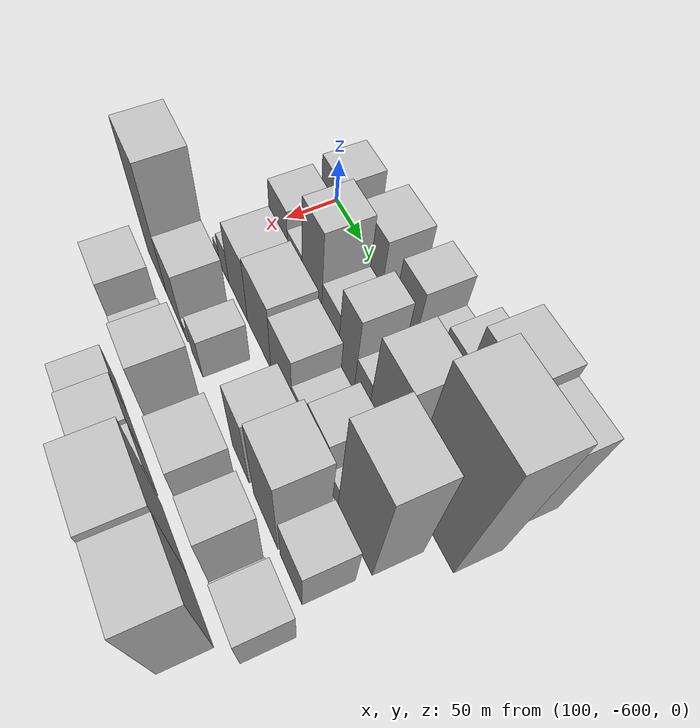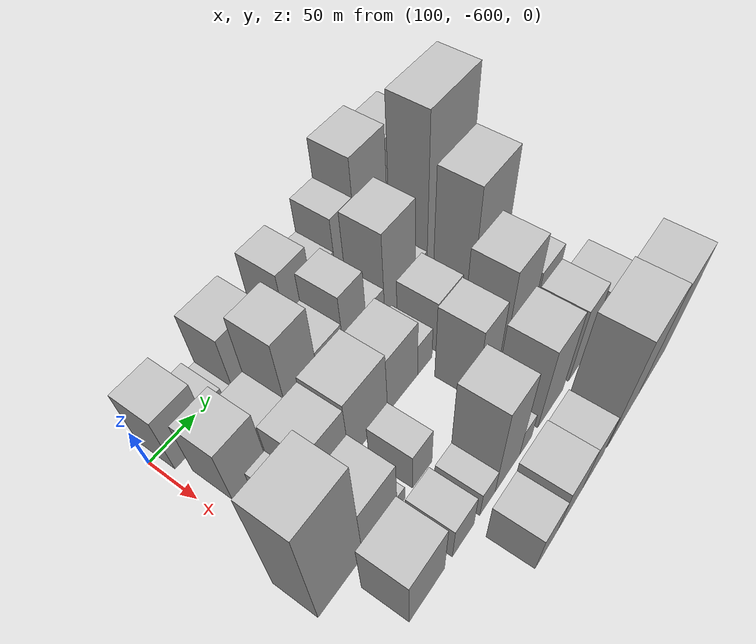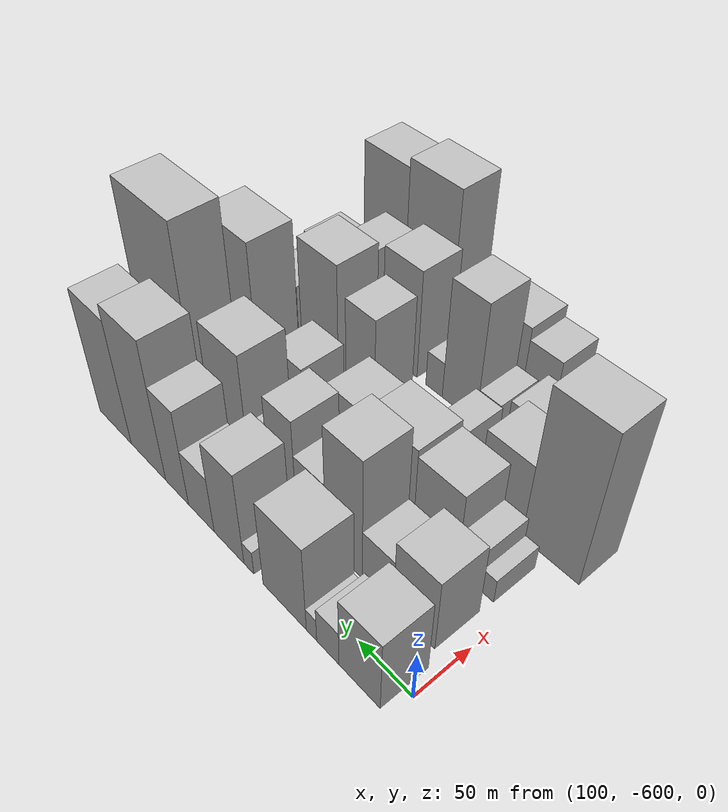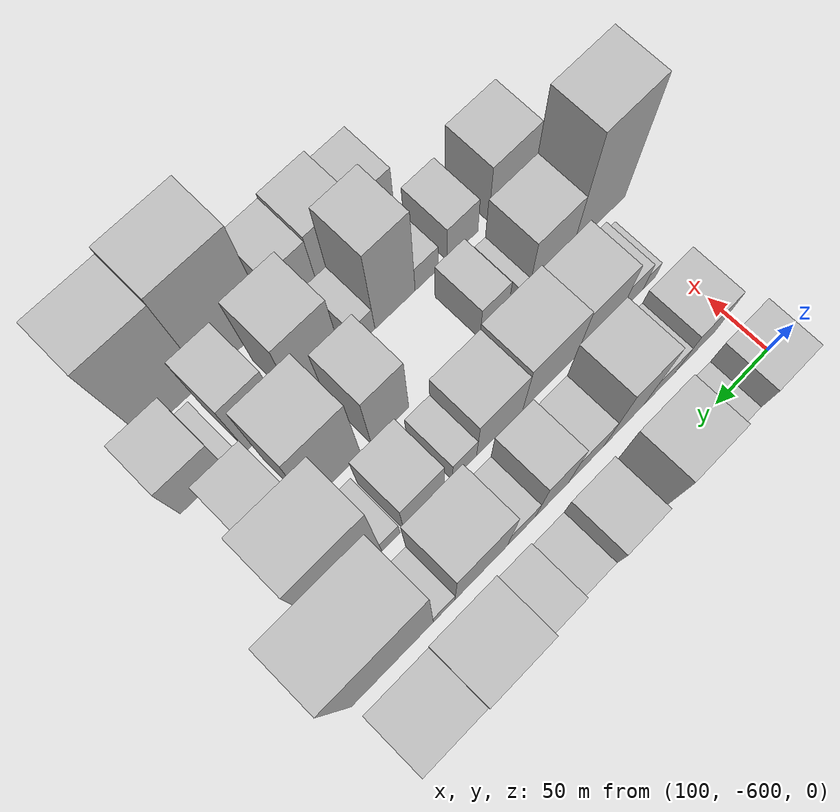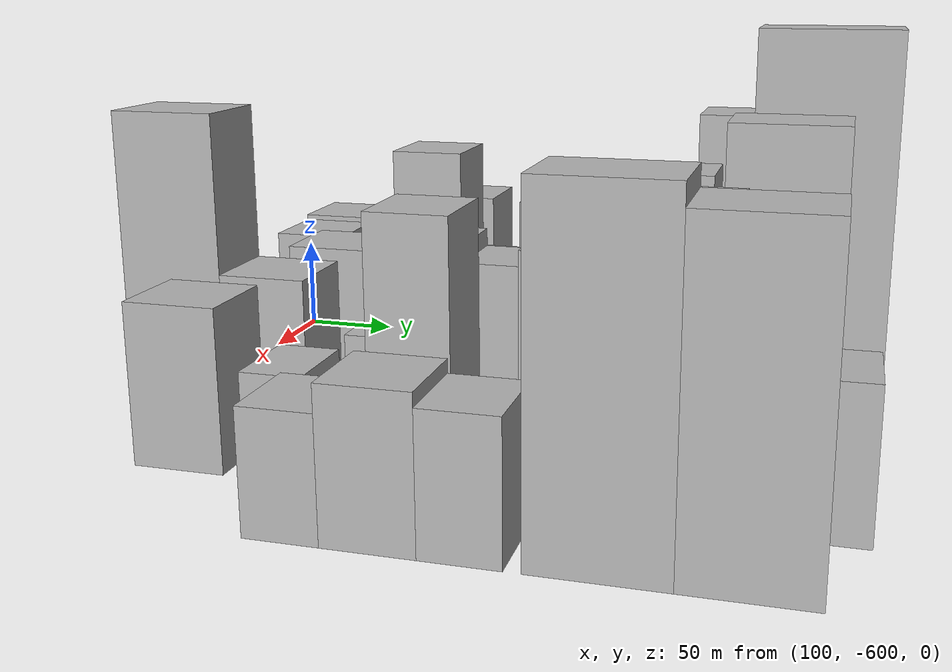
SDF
<sdf version="1.6">
 <world name="default">
  <model name="building_8">
   <static>1</static>
   <pose>100.0000 -573.2025 0 0.000000 0.000000 0.000000</pose>
   <link name="link">
    <pose>0 0 36.00 0 0 0</pose>
    <collision name="collision"><geometry><box><size>40.0000 37.8773 72.0000</size></box></geometry></collision>
    <visual name="visual">
     <cast_shadows>0</cast_shadows>
     <geometry><box><size>40.0000 37.8773 72.0000</size></box></geometry>
     <material>
      <script>
       <uri>model://HANNAS_wall/materials/scripts</uri>
       <uri>model://HANNAS_wall/materials/textures</uri>
       <name>vrc/HANNAS_wall</name>
      </script>
     </material>
    </visual>
   </link>
  </model>
  <model name="building_9">
   <static>1</static>
   <pose>100.0000 -543.5128 0 0.000000 0.000000 0.000000</pose>
   <link name="link">
    <pose>0 0 18.00 0 0 0</pose>
    <collision name="collision"><geometry><box><size>40.0000 21.5021 36.0000</size></box></geometry></collision>
    <visual name="visual">
     <cast_shadows>0</cast_shadows>
     <geometry><box><size>40.0000 21.5021 36.0000</size></box></geometry>
     <material>
      <script>
       <uri>model://HANNAS_wall/materials/scripts</uri>
       <uri>model://HANNAS_wall/materials/textures</uri>
       <name>vrc/HANNAS_wall</name>
      </script>
     </material>
    </visual>
   </link>
  </model>
  <model name="building_10">
   <static>1</static>
   <pose>100.0000 -527.5985 0 0.000000 0.000000 0.000000</pose>
   <link name="link">
    <pose>0 0 12.00 0 0 0</pose>
    <collision name="collision"><geometry><box><size>40.0000 10.3264 24.0000</size></box></geometry></collision>
    <visual name="visual">
     <cast_shadows>0</cast_shadows>
     <geometry><box><size>40.0000 10.3264 24.0000</size></box></geometry>
     <material>
      <script>
       <uri>model://HANNAS_wall/materials/scripts</uri>
       <uri>model://HANNAS_wall/materials/textures</uri>
       <name>vrc/HANNAS_wall</name>
      </script>
     </material>
    </visual>
   </link>
  </model>
  <model name="building_11">
   <static>1</static>
   <pose>100.0000 -499.9717 0 0.000000 0.000000 0.000000</pose>
   <link name="link">
    <pose>0 0 43.50 0 0 0</pose>
    <collision name="collision"><geometry><box><size>40.0000 44.9273 87.0000</size></box></geometry></collision>
    <visual name="visual">
     <cast_shadows>0</cast_shadows>
     <geometry><box><size>40.0000 44.9273 87.0000</size></box></geometry>
     <material>
      <script>
       <uri>model://HANNAS_wall/materials/scripts</uri>
       <uri>model://HANNAS_wall/materials/textures</uri>
       <name>vrc/HANNAS_wall</name>
      </script>
     </material>
    </visual>
   </link>
  </model>
  <model name="building_12">
   <static>1</static>
   <pose>100.0000 -462.0236 0 0.000000 0.000000 0.000000</pose>
   <link name="link">
    <pose>0 0 12.00 0 0 0</pose>
    <collision name="collision"><geometry><box><size>40.0000 10.9687 24.0000</size></box></geometry></collision>
    <visual name="visual">
     <cast_shadows>0</cast_shadows>
     <geometry><box><size>40.0000 10.9687 24.0000</size></box></geometry>
     <material>
      <script>
       <uri>model://HANNAS_wall/materials/scripts</uri>
       <uri>model://HANNAS_wall/materials/textures</uri>
       <name>vrc/HANNAS_wall</name>
      </script>
     </material>
    </visual>
   </link>
  </model>
  <model name="building_13">
   <static>1</static>
   <pose>100.0000 -439.4131 0 0.000000 0.000000 0.000000</pose>
   <link name="link">
    <pose>0 0 46.50 0 0 0</pose>
    <collision name="collision"><geometry><box><size>40.0000 34.2523 93.0000</size></box></geometry></collision>
    <visual name="visual">
     <cast_shadows>0</cast_shadows>
     <geometry><box><size>40.0000 34.2523 93.0000</size></box></geometry>
     <material>
      <script>
       <uri>model://HANNAS_wall/materials/scripts</uri>
       <uri>model://HANNAS_wall/materials/textures</uri>
       <name>vrc/HANNAS_wall</name>
      </script>
     </material>
    </visual>
   </link>
  </model>
  <model name="building_14">
   <static>1</static>
   <pose>100.0000 -406.8225 0 0.000000 0.000000 0.000000</pose>
   <link name="link">
    <pose>0 0 28.50 0 0 0</pose>
    <collision name="collision"><geometry><box><size>40.0000 30.9290 57.0000</size></box></geometry></collision>
    <visual name="visual">
     <cast_shadows>0</cast_shadows>
     <geometry><box><size>40.0000 30.9290 57.0000</size></box></geometry>
     <material>
      <script>
       <uri>model://HANNAS_wall/materials/scripts</uri>
       <uri>model://HANNAS_wall/materials/textures</uri>
       <name>vrc/HANNAS_wall</name>
      </script>
     </material>
    </visual>
   </link>
  </model>
  <model name="building_15">
   <static>1</static>
   <pose>100.0000 -376.9256 0 0.000000 0.000000 0.000000</pose>
   <link name="link">
    <pose>0 0 48.00 0 0 0</pose>
    <collision name="collision"><geometry><box><size>40.0000 28.8647 96.0000</size></box></geometry></collision>
    <visual name="visual">
     <cast_shadows>0</cast_shadows>
     <geometry><box><size>40.0000 28.8647 96.0000</size></box></geometry>
     <material>
      <script>
       <uri>model://HANNAS_wall/materials/scripts</uri>
       <uri>model://HANNAS_wall/materials/textures</uri>
       <name>vrc/HANNAS_wall</name>
      </script>
     </material>
    </visual>
   </link>
  </model>
  <model name="building_16">
   <static>1</static>
   <pose>100.0000 -339.4239 0 0.000000 0.000000 0.000000</pose>
   <link name="link">
    <pose>0 0 69.00 0 0 0</pose>
    <collision name="collision"><geometry><box><size>40.0000 46.1388 138.0000</size></box></geometry></collision>
    <visual name="visual">
     <cast_shadows>0</cast_shadows>
     <geometry><box><size>40.0000 46.1388 138.0000</size></box></geometry>
     <material>
      <script>
       <uri>model://HANNAS_wall/materials/scripts</uri>
       <uri>model://HANNAS_wall/materials/textures</uri>
       <name>vrc/HANNAS_wall</name>
      </script>
     </material>
    </visual>
   </link>
  </model>
  <model name="building_17">
   <static>1</static>
   <pose>100.0000 -294.0704 0 0.000000 0.000000 0.000000</pose>
   <link name="link">
    <pose>0 0 61.50 0 0 0</pose>
    <collision name="collision"><geometry><box><size>40.0000 44.5682 123.0000</size></box></geometry></collision>
    <visual name="visual">
     <cast_shadows>0</cast_shadows>
     <geometry><box><size>40.0000 44.5682 123.0000</size></box></geometry>
     <material>
      <script>
       <uri>model://HANNAS_wall/materials/scripts</uri>
       <uri>model://HANNAS_wall/materials/textures</uri>
       <name>vrc/HANNAS_wall</name>
      </script>
     </material>
    </visual>
   </link>
  </model>
  <model name="building_60">
   <static>1</static>
   <pose>152.0000 -566.4229 0 0.000000 0.000000 0.000000</pose>
   <link name="link">
    <pose>0 0 36.00 0 0 0</pose>
    <collision name="collision"><geometry><box><size>40.0000 38.2049 72.0000</size></box></geometry></collision>
    <visual name="visual">
     <cast_shadows>0</cast_shadows>
     <geometry><box><size>40.0000 38.2049 72.0000</size></box></geometry>
     <material>
      <script>
       <uri>model://HANNAS_wall/materials/scripts</uri>
       <uri>model://HANNAS_wall/materials/textures</uri>
       <name>vrc/HANNAS_wall</name>
      </script>
     </material>
    </visual>
   </link>
  </model>
  <model name="building_61">
   <static>1</static>
   <pose>152.0000 -532.1803 0 0.000000 0.000000 0.000000</pose>
   <link name="link">
    <pose>0 0 25.50 0 0 0</pose>
    <collision name="collision"><geometry><box><size>40.0000 30.2803 51.0000</size></box></geometry></collision>
    <visual name="visual">
     <cast_shadows>0</cast_shadows>
     <geometry><box><size>40.0000 30.2803 51.0000</size></box></geometry>
     <material>
      <script>
       <uri>model://HANNAS_wall/materials/scripts</uri>
       <uri>model://HANNAS_wall/materials/textures</uri>
       <name>vrc/HANNAS_wall</name>
      </script>
     </material>
    </visual>
   </link>
  </model>
  <model name="building_62">
   <static>1</static>
   <pose>152.0000 -498.4488 0 0.000000 0.000000 0.000000</pose>
   <link name="link">
    <pose>0 0 60.00 0 0 0</pose>
    <collision name="collision"><geometry><box><size>40.0000 37.1826 120.0000</size></box></geometry></collision>
    <visual name="visual">
     <cast_shadows>0</cast_shadows>
     <geometry><box><size>40.0000 37.1826 120.0000</size></box></geometry>
     <material>
      <script>
       <uri>model://HANNAS_wall/materials/scripts</uri>
       <uri>model://HANNAS_wall/materials/textures</uri>
       <name>vrc/HANNAS_wall</name>
      </script>
     </material>
    </visual>
   </link>
  </model>
  <model name="building_63">
   <static>1</static>
   <pose>152.0000 -463.9242 0 0.000000 0.000000 0.000000</pose>
   <link name="link">
    <pose>0 0 31.50 0 0 0</pose>
    <collision name="collision"><geometry><box><size>40.0000 31.8665 63.0000</size></box></geometry></collision>
    <visual name="visual">
     <cast_shadows>0</cast_shadows>
     <geometry><box><size>40.0000 31.8665 63.0000</size></box></geometry>
     <material>
      <script>
       <uri>model://HANNAS_wall/materials/scripts</uri>
       <uri>model://HANNAS_wall/materials/textures</uri>
       <name>vrc/HANNAS_wall</name>
      </script>
     </material>
    </visual>
   </link>
  </model>
  <model name="building_64">
   <static>1</static>
   <pose>152.0000 -432.9958 0 0.000000 0.000000 0.000000</pose>
   <link name="link">
    <pose>0 0 48.00 0 0 0</pose>
    <collision name="collision"><geometry><box><size>40.0000 29.9902 96.0000</size></box></geometry></collision>
    <visual name="visual">
     <cast_shadows>0</cast_shadows>
     <geometry><box><size>40.0000 29.9902 96.0000</size></box></geometry>
     <material>
      <script>
       <uri>model://HANNAS_wall/materials/scripts</uri>
       <uri>model://HANNAS_wall/materials/textures</uri>
       <name>vrc/HANNAS_wall</name>
      </script>
     </material>
    </visual>
   </link>
  </model>
  <model name="building_65">
   <static>1</static>
   <pose>152.0000 -405.6965 0 0.000000 0.000000 0.000000</pose>
   <link name="link">
    <pose>0 0 24.00 0 0 0</pose>
    <collision name="collision"><geometry><box><size>40.0000 24.6084 48.0000</size></box></geometry></collision>
    <visual name="visual">
     <cast_shadows>0</cast_shadows>
     <geometry><box><size>40.0000 24.6084 48.0000</size></box></geometry>
     <material>
      <script>
       <uri>model://HANNAS_wall/materials/scripts</uri>
       <uri>model://HANNAS_wall/materials/textures</uri>
       <name>vrc/HANNAS_wall</name>
      </script>
     </material>
    </visual>
   </link>
  </model>
  <model name="building_66">
   <static>1</static>
   <pose>152.0000 -370.7849 0 0.000000 0.000000 0.000000</pose>
   <link name="link">
    <pose>0 0 57.00 0 0 0</pose>
    <collision name="collision"><geometry><box><size>40.0000 45.2149 114.0000</size></box></geometry></collision>
    <visual name="visual">
     <cast_shadows>0</cast_shadows>
     <geometry><box><size>40.0000 45.2149 114.0000</size></box></geometry>
     <material>
      <script>
       <uri>model://HANNAS_wall/materials/scripts</uri>
       <uri>model://HANNAS_wall/materials/textures</uri>
       <name>vrc/HANNAS_wall</name>
      </script>
     </material>
    </visual>
   </link>
  </model>
  <model name="building_67">
   <static>1</static>
   <pose>152.0000 -339.0721 0 0.000000 0.000000 0.000000</pose>
   <link name="link">
    <pose>0 0 16.50 0 0 0</pose>
    <collision name="collision"><geometry><box><size>40.0000 18.2106 33.0000</size></box></geometry></collision>
    <visual name="visual">
     <cast_shadows>0</cast_shadows>
     <geometry><box><size>40.0000 18.2106 33.0000</size></box></geometry>
     <material>
      <script>
       <uri>model://HANNAS_wall/materials/scripts</uri>
       <uri>model://HANNAS_wall/materials/textures</uri>
       <name>vrc/HANNAS_wall</name>
      </script>
     </material>
    </visual>
   </link>
  </model>
  <model name="building_68">
   <static>1</static>
   <pose>152.0000 -295.9075 0 0.000000 0.000000 0.000000</pose>
   <link name="link">
    <pose>0 0 93.00 0 0 0</pose>
    <collision name="collision"><geometry><box><size>40.0000 68.1185 186.0000</size></box></geometry></collision>
    <visual name="visual">
     <cast_shadows>0</cast_shadows>
     <geometry><box><size>40.0000 68.1185 186.0000</size></box></geometry>
     <material>
      <script>
       <uri>model://HANNAS_wall/materials/scripts</uri>
       <uri>model://HANNAS_wall/materials/textures</uri>
       <name>vrc/HANNAS_wall</name>
      </script>
     </material>
    </visual>
   </link>
  </model>
  <model name="building_106">
   <static>1</static>
   <pose>204.0000 -580.7842 0 0.000000 0.000000 0.000000</pose>
   <link name="link">
    <pose>0 0 12.00 0 0 0</pose>
    <collision name="collision"><geometry><box><size>40.0000 11.9209 24.0000</size></box></geometry></collision>
    <visual name="visual">
     <cast_shadows>0</cast_shadows>
     <geometry><box><size>40.0000 11.9209 24.0000</size></box></geometry>
     <material>
      <script>
       <uri>model://HANNAS_wall/materials/scripts</uri>
       <uri>model://HANNAS_wall/materials/textures</uri>
       <name>vrc/HANNAS_wall</name>
      </script>
     </material>
    </visual>
   </link>
  </model>
  <model name="building_107">
   <static>1</static>
   <pose>204.0000 -564.2844 0 0.000000 0.000000 0.000000</pose>
   <link name="link">
    <pose>0 0 21.00 0 0 0</pose>
    <collision name="collision"><geometry><box><size>40.0000 21.0786 42.0000</size></box></geometry></collision>
    <visual name="visual">
     <cast_shadows>0</cast_shadows>
     <geometry><box><size>40.0000 21.0786 42.0000</size></box></geometry>
     <material>
      <script>
       <uri>model://HANNAS_wall/materials/scripts</uri>
       <uri>model://HANNAS_wall/materials/textures</uri>
       <name>vrc/HANNAS_wall</name>
      </script>
     </material>
    </visual>
   </link>
  </model>
  <model name="building_108">
   <static>1</static>
   <pose>204.0000 -532.5019 0 0.000000 0.000000 0.000000</pose>
   <link name="link">
    <pose>0 0 39.00 0 0 0</pose>
    <collision name="collision"><geometry><box><size>40.0000 42.4865 78.0000</size></box></geometry></collision>
    <visual name="visual">
     <cast_shadows>0</cast_shadows>
     <geometry><box><size>40.0000 42.4865 78.0000</size></box></geometry>
     <material>
      <script>
       <uri>model://HANNAS_wall/materials/scripts</uri>
       <uri>model://HANNAS_wall/materials/textures</uri>
       <name>vrc/HANNAS_wall</name>
      </script>
     </material>
    </visual>
   </link>
  </model>
  <model name="building_109">
   <static>1</static>
   <pose>204.0000 -486.6025 0 0.000000 0.000000 0.000000</pose>
   <link name="link">
    <pose>0 0 42.00 0 0 0</pose>
    <collision name="collision"><geometry><box><size>40.0000 49.3121 84.0000</size></box></geometry></collision>
    <visual name="visual">
     <cast_shadows>0</cast_shadows>
     <geometry><box><size>40.0000 49.3121 84.0000</size></box></geometry>
     <material>
      <script>
       <uri>model://HANNAS_wall/materials/scripts</uri>
       <uri>model://HANNAS_wall/materials/textures</uri>
       <name>vrc/HANNAS_wall</name>
      </script>
     </material>
    </visual>
   </link>
  </model>
  <model name="building_110">
   <static>1</static>
   <pose>204.0000 -441.1313 0 0.000000 0.000000 0.000000</pose>
   <link name="link">
    <pose>0 0 37.50 0 0 0</pose>
    <collision name="collision"><geometry><box><size>40.0000 41.6303 75.0000</size></box></geometry></collision>
    <visual name="visual">
     <cast_shadows>0</cast_shadows>
     <geometry><box><size>40.0000 41.6303 75.0000</size></box></geometry>
     <material>
      <script>
       <uri>model://HANNAS_wall/materials/scripts</uri>
       <uri>model://HANNAS_wall/materials/textures</uri>
       <name>vrc/HANNAS_wall</name>
      </script>
     </material>
    </visual>
   </link>
  </model>
  <model name="building_111">
   <static>1</static>
   <pose>204.0000 -409.7591 0 0.000000 0.000000 0.000000</pose>
   <link name="link">
    <pose>0 0 21.00 0 0 0</pose>
    <collision name="collision"><geometry><box><size>40.0000 21.1142 42.0000</size></box></geometry></collision>
    <visual name="visual">
     <cast_shadows>0</cast_shadows>
     <geometry><box><size>40.0000 21.1142 42.0000</size></box></geometry>
     <material>
      <script>
       <uri>model://HANNAS_wall/materials/scripts</uri>
       <uri>model://HANNAS_wall/materials/textures</uri>
       <name>vrc/HANNAS_wall</name>
      </script>
     </material>
    </visual>
   </link>
  </model>
  <model name="building_112">
   <static>1</static>
   <pose>204.0000 -374.4851 0 0.000000 0.000000 0.000000</pose>
   <link name="link">
    <pose>0 0 33.00 0 0 0</pose>
    <collision name="collision"><geometry><box><size>40.0000 35.4338 66.0000</size></box></geometry></collision>
    <visual name="visual">
     <cast_shadows>0</cast_shadows>
     <geometry><box><size>40.0000 35.4338 66.0000</size></box></geometry>
     <material>
      <script>
       <uri>model://HANNAS_wall/materials/scripts</uri>
       <uri>model://HANNAS_wall/materials/textures</uri>
       <name>vrc/HANNAS_wall</name>
      </script>
     </material>
    </visual>
   </link>
  </model>
  <model name="building_113">
   <static>1</static>
   <pose>204.0000 -345.9222 0 0.000000 0.000000 0.000000</pose>
   <link name="link">
    <pose>0 0 15.00 0 0 0</pose>
    <collision name="collision"><geometry><box><size>40.0000 15.6921 30.0000</size></box></geometry></collision>
    <visual name="visual">
     <cast_shadows>0</cast_shadows>
     <geometry><box><size>40.0000 15.6921 30.0000</size></box></geometry>
     <material>
      <script>
       <uri>model://HANNAS_wall/materials/scripts</uri>
       <uri>model://HANNAS_wall/materials/textures</uri>
       <name>vrc/HANNAS_wall</name>
      </script>
     </material>
    </visual>
   </link>
  </model>
  <model name="building_114">
   <static>1</static>
   <pose>204.0000 -310.6812 0 0.000000 0.000000 0.000000</pose>
   <link name="link">
    <pose>0 0 73.50 0 0 0</pose>
    <collision name="collision"><geometry><box><size>40.0000 54.7898 147.0000</size></box></geometry></collision>
    <visual name="visual">
     <cast_shadows>0</cast_shadows>
     <geometry><box><size>40.0000 54.7898 147.0000</size></box></geometry>
     <material>
      <script>
       <uri>model://HANNAS_wall/materials/scripts</uri>
       <uri>model://HANNAS_wall/materials/textures</uri>
       <name>vrc/HANNAS_wall</name>
      </script>
     </material>
    </visual>
   </link>
  </model>
  <model name="building_154">
   <static>1</static>
   <pose>256.0000 -589.5667 0 0.000000 0.000000 0.000000</pose>
   <link name="link">
    <pose>0 0 75.00 0 0 0</pose>
    <collision name="collision"><geometry><box><size>40.0000 50.2100 150.0000</size></box></geometry></collision>
    <visual name="visual">
     <cast_shadows>0</cast_shadows>
     <geometry><box><size>40.0000 50.2100 150.0000</size></box></geometry>
     <material>
      <script>
       <uri>model://HANNAS_wall/materials/scripts</uri>
       <uri>model://HANNAS_wall/materials/textures</uri>
       <name>vrc/HANNAS_wall</name>
      </script>
     </material>
    </visual>
   </link>
  </model>
  <model name="building_155">
   <static>1</static>
   <pose>256.0000 -543.4824 0 0.000000 0.000000 0.000000</pose>
   <link name="link">
    <pose>0 0 37.50 0 0 0</pose>
    <collision name="collision"><geometry><box><size>40.0000 41.9586 75.0000</size></box></geometry></collision>
    <visual name="visual">
     <cast_shadows>0</cast_shadows>
     <geometry><box><size>40.0000 41.9586 75.0000</size></box></geometry>
     <material>
      <script>
       <uri>model://HANNAS_wall/materials/scripts</uri>
       <uri>model://HANNAS_wall/materials/textures</uri>
       <name>vrc/HANNAS_wall</name>
      </script>
     </material>
    </visual>
   </link>
  </model>
  <model name="building_156">
   <static>1</static>
   <pose>256.0000 -517.6097 0 0.000000 0.000000 0.000000</pose>
   <link name="link">
    <pose>0 0 10.50 0 0 0</pose>
    <collision name="collision"><geometry><box><size>40.0000 9.7870 21.0000</size></box></geometry></collision>
    <visual name="visual">
     <cast_shadows>0</cast_shadows>
     <geometry><box><size>40.0000 9.7870 21.0000</size></box></geometry>
     <material>
      <script>
       <uri>model://HANNAS_wall/materials/scripts</uri>
       <uri>model://HANNAS_wall/materials/textures</uri>
       <name>vrc/HANNAS_wall</name>
      </script>
     </material>
    </visual>
   </link>
  </model>
  <model name="building_157">
   <static>1</static>
   <pose>256.0000 -489.8665 0 0.000000 0.000000 0.000000</pose>
   <link name="link">
    <pose>0 0 25.50 0 0 0</pose>
    <collision name="collision"><geometry><box><size>40.0000 25.6993 51.0000</size></box></geometry></collision>
    <visual name="visual">
     <cast_shadows>0</cast_shadows>
     <geometry><box><size>40.0000 25.6993 51.0000</size></box></geometry>
     <material>
      <script>
       <uri>model://HANNAS_wall/materials/scripts</uri>
       <uri>model://HANNAS_wall/materials/textures</uri>
       <name>vrc/HANNAS_wall</name>
      </script>
     </material>
    </visual>
   </link>
  </model>
  <model name="building_158">
   <static>1</static>
   <pose>256.0000 -396.6729 0 0.000000 0.000000 0.000000</pose>
   <link name="link">
    <pose>0 0 48.00 0 0 0</pose>
    <collision name="collision"><geometry><box><size>40.0000 32.8960 96.0000</size></box></geometry></collision>
    <visual name="visual">
     <cast_shadows>0</cast_shadows>
     <geometry><box><size>40.0000 32.8960 96.0000</size></box></geometry>
     <material>
      <script>
       <uri>model://HANNAS_wall/materials/scripts</uri>
       <uri>model://HANNAS_wall/materials/textures</uri>
       <name>vrc/HANNAS_wall</name>
      </script>
     </material>
    </visual>
   </link>
  </model>
  <model name="building_159">
   <static>1</static>
   <pose>256.0000 -348.8127 0 0.000000 0.000000 0.000000</pose>
   <link name="link">
    <pose>0 0 60.00 0 0 0</pose>
    <collision name="collision"><geometry><box><size>40.0000 44.8244 120.0000</size></box></geometry></collision>
    <visual name="visual">
     <cast_shadows>0</cast_shadows>
     <geometry><box><size>40.0000 44.8244 120.0000</size></box></geometry>
     <material>
      <script>
       <uri>model://HANNAS_wall/materials/scripts</uri>
       <uri>model://HANNAS_wall/materials/textures</uri>
       <name>vrc/HANNAS_wall</name>
      </script>
     </material>
    </visual>
   </link>
  </model>
  <model name="building_160">
   <static>1</static>
   <pose>256.0000 -303.7201 0 0.000000 0.000000 0.000000</pose>
   <link name="link">
    <pose>0 0 34.50 0 0 0</pose>
    <collision name="collision"><geometry><box><size>40.0000 37.3608 69.0000</size></box></geometry></collision>
    <visual name="visual">
     <cast_shadows>0</cast_shadows>
     <geometry><box><size>40.0000 37.3608 69.0000</size></box></geometry>
     <material>
      <script>
       <uri>model://HANNAS_wall/materials/scripts</uri>
       <uri>model://HANNAS_wall/materials/textures</uri>
       <name>vrc/HANNAS_wall</name>
      </script>
     </material>
    </visual>
   </link>
  </model>
  <model name="building_206">
   <static>1</static>
   <pose>308.0000 -560.5148 0 0.000000 0.000000 0.000000</pose>
   <link name="link">
    <pose>0 0 37.50 0 0 0</pose>
    <collision name="collision"><geometry><box><size>40.0000 43.2040 75.0000</size></box></geometry></collision>
    <visual name="visual">
     <cast_shadows>0</cast_shadows>
     <geometry><box><size>40.0000 43.2040 75.0000</size></box></geometry>
     <material>
      <script>
       <uri>model://HANNAS_wall/materials/scripts</uri>
       <uri>model://HANNAS_wall/materials/textures</uri>
       <name>vrc/HANNAS_wall</name>
      </script>
     </material>
    </visual>
   </link>
  </model>
  <model name="building_207">
   <static>1</static>
   <pose>308.0000 -514.6005 0 0.000000 0.000000 0.000000</pose>
   <link name="link">
    <pose>0 0 24.00 0 0 0</pose>
    <collision name="collision"><geometry><box><size>40.0000 28.6246 48.0000</size></box></geometry></collision>
    <visual name="visual">
     <cast_shadows>0</cast_shadows>
     <geometry><box><size>40.0000 28.6246 48.0000</size></box></geometry>
     <material>
      <script>
       <uri>model://HANNAS_wall/materials/scripts</uri>
       <uri>model://HANNAS_wall/materials/textures</uri>
       <name>vrc/HANNAS_wall</name>
      </script>
     </material>
    </visual>
   </link>
  </model>
  <model name="building_208">
   <static>1</static>
   <pose>308.0000 -481.5680 0 0.000000 0.000000 0.000000</pose>
   <link name="link">
    <pose>0 0 18.00 0 0 0</pose>
    <collision name="collision"><geometry><box><size>40.0000 21.4404 36.0000</size></box></geometry></collision>
    <visual name="visual">
     <cast_shadows>0</cast_shadows>
     <geometry><box><size>40.0000 21.4404 36.0000</size></box></geometry>
     <material>
      <script>
       <uri>model://HANNAS_wall/materials/scripts</uri>
       <uri>model://HANNAS_wall/materials/textures</uri>
       <name>vrc/HANNAS_wall</name>
      </script>
     </material>
    </visual>
   </link>
  </model>
  <model name="building_209">
   <static>1</static>
   <pose>308.0000 -452.7056 0 0.000000 0.000000 0.000000</pose>
   <link name="link">
    <pose>0 0 60.00 0 0 0</pose>
    <collision name="collision"><geometry><box><size>40.0000 36.2843 120.0000</size></box></geometry></collision>
    <visual name="visual">
     <cast_shadows>0</cast_shadows>
     <geometry><box><size>40.0000 36.2843 120.0000</size></box></geometry>
     <material>
      <script>
       <uri>model://HANNAS_wall/materials/scripts</uri>
       <uri>model://HANNAS_wall/materials/textures</uri>
       <name>vrc/HANNAS_wall</name>
      </script>
     </material>
    </visual>
   </link>
  </model>
  <model name="building_210">
   <static>1</static>
   <pose>308.0000 -425.3955 0 0.000000 0.000000 0.000000</pose>
   <link name="link">
    <pose>0 0 18.00 0 0 0</pose>
    <collision name="collision"><geometry><box><size>40.0000 18.3359 36.0000</size></box></geometry></collision>
    <visual name="visual">
     <cast_shadows>0</cast_shadows>
     <geometry><box><size>40.0000 18.3359 36.0000</size></box></geometry>
     <material>
      <script>
       <uri>model://HANNAS_wall/materials/scripts</uri>
       <uri>model://HANNAS_wall/materials/textures</uri>
       <name>vrc/HANNAS_wall</name>
      </script>
     </material>
    </visual>
   </link>
  </model>
  <model name="building_211">
   <static>1</static>
   <pose>308.0000 -385.7775 0 0.000000 0.000000 0.000000</pose>
   <link name="link">
    <pose>0 0 54.00 0 0 0</pose>
    <collision name="collision"><geometry><box><size>40.0000 40.8999 108.0000</size></box></geometry></collision>
    <visual name="visual">
     <cast_shadows>0</cast_shadows>
     <geometry><box><size>40.0000 40.8999 108.0000</size></box></geometry>
     <material>
      <script>
       <uri>model://HANNAS_wall/materials/scripts</uri>
       <uri>model://HANNAS_wall/materials/textures</uri>
       <name>vrc/HANNAS_wall</name>
      </script>
     </material>
    </visual>
   </link>
  </model>
  <model name="building_212">
   <static>1</static>
   <pose>308.0000 -339.1281 0 0.000000 0.000000 0.000000</pose>
   <link name="link">
    <pose>0 0 48.00 0 0 0</pose>
    <collision name="collision"><geometry><box><size>40.0000 32.3989 96.0000</size></box></geometry></collision>
    <visual name="visual">
     <cast_shadows>0</cast_shadows>
     <geometry><box><size>40.0000 32.3989 96.0000</size></box></geometry>
     <material>
      <script>
       <uri>model://HANNAS_wall/materials/scripts</uri>
       <uri>model://HANNAS_wall/materials/textures</uri>
       <name>vrc/HANNAS_wall</name>
      </script>
     </material>
    </visual>
   </link>
  </model>
  <model name="building_213">
   <static>1</static>
   <pose>308.0000 -312.3981 0 0.000000 0.000000 0.000000</pose>
   <link name="link">
    <pose>0 0 13.50 0 0 0</pose>
    <collision name="collision"><geometry><box><size>40.0000 11.0612 27.0000</size></box></geometry></collision>
    <visual name="visual">
     <cast_shadows>0</cast_shadows>
     <geometry><box><size>40.0000 11.0612 27.0000</size></box></geometry>
     <material>
      <script>
       <uri>model://HANNAS_wall/materials/scripts</uri>
       <uri>model://HANNAS_wall/materials/textures</uri>
       <name>vrc/HANNAS_wall</name>
      </script>
     </material>
    </visual>
   </link>
  </model>
  <model name="building_214">
   <static>1</static>
   <pose>308.0000 -287.2141 0 0.000000 0.000000 0.000000</pose>
   <link name="link">
    <pose>0 0 33.00 0 0 0</pose>
    <collision name="collision"><geometry><box><size>40.0000 39.3068 66.0000</size></box></geometry></collision>
    <visual name="visual">
     <cast_shadows>0</cast_shadows>
     <geometry><box><size>40.0000 39.3068 66.0000</size></box></geometry>
     <material>
      <script>
       <uri>model://HANNAS_wall/materials/scripts</uri>
       <uri>model://HANNAS_wall/materials/textures</uri>
       <name>vrc/HANNAS_wall</name>
      </script>
     </material>
    </visual>
   </link>
  </model>
  <model name="building_257">
   <static>1</static>
   <pose>360.0000 -486.9092 0 0.000000 0.000000 0.000000</pose>
   <link name="link">
    <pose>0 0 27.00 0 0 0</pose>
    <collision name="collision"><geometry><box><size>40.0000 32.3010 54.0000</size></box></geometry></collision>
    <visual name="visual">
     <cast_shadows>0</cast_shadows>
     <geometry><box><size>40.0000 32.3010 54.0000</size></box></geometry>
     <material>
      <script>
       <uri>model://HANNAS_wall/materials/scripts</uri>
       <uri>model://HANNAS_wall/materials/textures</uri>
       <name>vrc/HANNAS_wall</name>
      </script>
     </material>
    </visual>
   </link>
  </model>
  <model name="building_258">
   <static>1</static>
   <pose>360.0000 -451.1412 0 0.000000 0.000000 0.000000</pose>
   <link name="link">
    <pose>0 0 33.00 0 0 0</pose>
    <collision name="collision"><geometry><box><size>40.0000 39.2350 66.0000</size></box></geometry></collision>
    <visual name="visual">
     <cast_shadows>0</cast_shadows>
     <geometry><box><size>40.0000 39.2350 66.0000</size></box></geometry>
     <material>
      <script>
       <uri>model://HANNAS_wall/materials/scripts</uri>
       <uri>model://HANNAS_wall/materials/textures</uri>
       <name>vrc/HANNAS_wall</name>
      </script>
     </material>
    </visual>
   </link>
  </model>
  <model name="building_259">
   <static>1</static>
   <pose>360.0000 -414.8213 0 0.000000 0.000000 0.000000</pose>
   <link name="link">
    <pose>0 0 30.00 0 0 0</pose>
    <collision name="collision"><geometry><box><size>40.0000 33.4049 60.0000</size></box></geometry></collision>
    <visual name="visual">
     <cast_shadows>0</cast_shadows>
     <geometry><box><size>40.0000 33.4049 60.0000</size></box></geometry>
     <material>
      <script>
       <uri>model://HANNAS_wall/materials/scripts</uri>
       <uri>model://HANNAS_wall/materials/textures</uri>
       <name>vrc/HANNAS_wall</name>
      </script>
     </material>
    </visual>
   </link>
  </model>
  <model name="building_260">
   <static>1</static>
   <pose>360.0000 -363.4066 0 0.000000 0.000000 0.000000</pose>
   <link name="link">
    <pose>0 0 73.50 0 0 0</pose>
    <collision name="collision"><geometry><box><size>40.0000 55.4244 147.0000</size></box></geometry></collision>
    <visual name="visual">
     <cast_shadows>0</cast_shadows>
     <geometry><box><size>40.0000 55.4244 147.0000</size></box></geometry>
     <material>
      <script>
       <uri>model://HANNAS_wall/materials/scripts</uri>
       <uri>model://HANNAS_wall/materials/textures</uri>
       <name>vrc/HANNAS_wall</name>
      </script>
     </material>
    </visual>
   </link>
  </model>
  <model name="building_261">
   <static>1</static>
   <pose>360.0000 -309.7651 0 0.000000 0.000000 0.000000</pose>
   <link name="link">
    <pose>0 0 69.00 0 0 0</pose>
    <collision name="collision"><geometry><box><size>40.0000 51.8586 138.0000</size></box></geometry></collision>
    <visual name="visual">
     <cast_shadows>0</cast_shadows>
     <geometry><box><size>40.0000 51.8586 138.0000</size></box></geometry>
     <material>
      <script>
       <uri>model://HANNAS_wall/materials/scripts</uri>
       <uri>model://HANNAS_wall/materials/textures</uri>
       <name>vrc/HANNAS_wall</name>
      </script>
     </material>
    </visual>
   </link>
  </model>
 </world>
</sdf>
